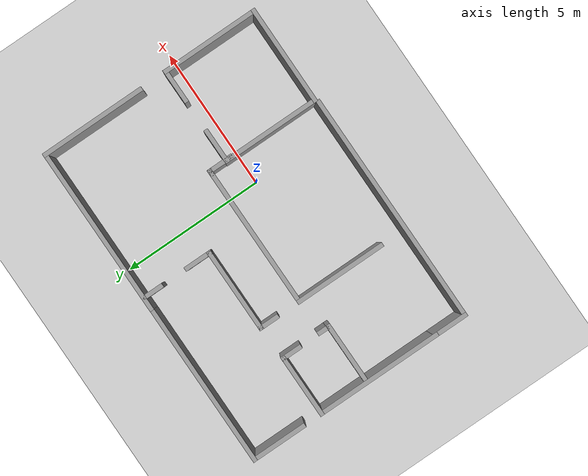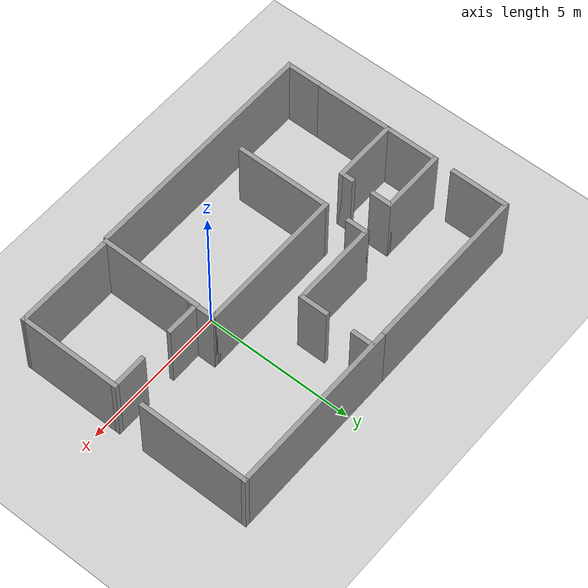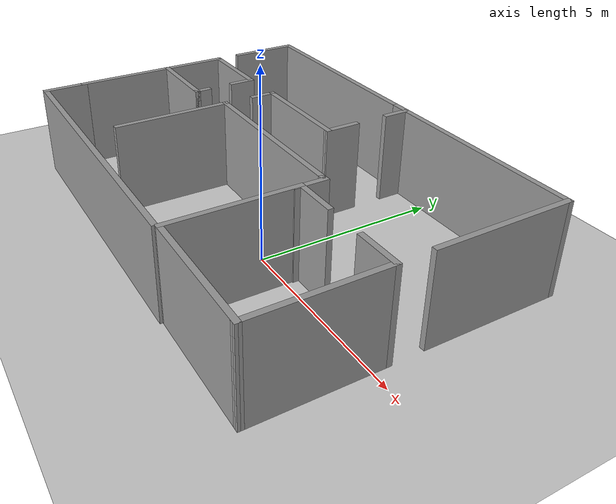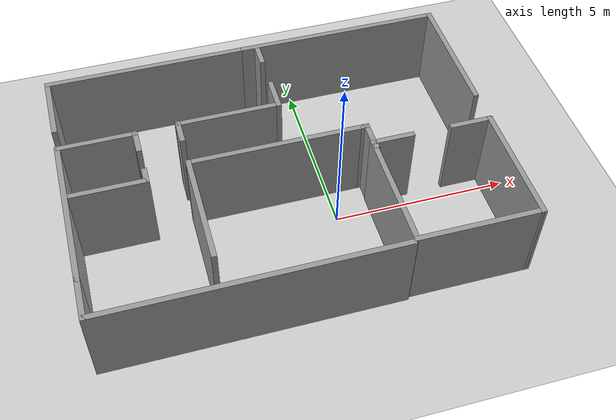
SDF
<sdf version="1.6">
 <world name="default">
  <light name="sun" type="directional">
   <pose>0 0 10 0 -0 0</pose>
   <diffuse>0.8 0.8 0.8 1</diffuse>
   <specular>0.1 0.1 0.1 1</specular>
   <attenuation>
    <range>1000</range>
    <constant>0.9</constant>
    <linear>0.01</linear>
    <quadratic>0.001</quadratic>
   </attenuation>
   <direction>-0.5 0.5 -1</direction>
  </light>
  <model name="ground_plane">
   <static>1</static>
   <link name="link">
    <collision name="collision">
     <geometry><plane><normal>0 0 1</normal><size>100 100</size></plane></geometry>
     <surface><friction><ode><mu>100</mu><mu2>50</mu2></ode></friction></surface>
    </collision>
    <visual name="visual">
     <cast_shadows>0</cast_shadows>
     <geometry><plane><normal>0 0 1</normal><size>100 100</size></plane></geometry>
     <material>
      <script><uri>file://media/materials/scripts/gazebo.material</uri><name>Gazebo/Grey</name></script>
     </material>
    </visual>
   </link>
  </model>
  <gravity>0 0 -9.8</gravity>
  <magnetic_field>6e-06 2.3e-05 -4.2e-05</magnetic_field>
  <atmosphere type="adiabatic"/>
  <physics name="default_physics" default="0" type="ode">
   <max_step_size>0.001</max_step_size>
   <real_time_factor>1</real_time_factor>
   <real_time_update_rate>1000</real_time_update_rate>
  </physics>
  <scene><ambient>0.4 0.4 0.4 1</ambient><background>0.7 0.7 0.7 1</background><shadows>1</shadows></scene>
  <spherical_coordinates>
   <surface_model>EARTH_WGS84</surface_model>
   <latitude_deg>0</latitude_deg>
   <longitude_deg>0</longitude_deg>
   <elevation>0</elevation>
   <heading_deg>0</heading_deg>
  </spherical_coordinates>
  <model name="Untitled">
   <pose>1.50477 1.03036 0 0 -0 0</pose>
   <link name="Wall_1">
    <collision name="Wall_1_Collision">
     <geometry><box><size>3.5329 0.15 2.5</size></box></geometry>
     <pose>0 0 1.25 0 -0 0</pose>
    </collision>
    <visual name="Wall_1_Visual">
     <pose>0 0 1.25 0 -0 0</pose>
     <geometry><box><size>3.5329 0.15 2.5</size></box></geometry>
     <material>
      <script><uri>file://media/materials/scripts/gazebo.material</uri><name>Gazebo/Grey</name></script>
      <ambient>1 1 1 1</ambient>
     </material>
    </visual>
    <pose>1.24202 -3.9643 0 0 0 -0.001944</pose>
   </link>
   <link name="Wall_13">
    <collision name="Wall_13_Collision">
     <geometry><box><size>3.5 0.15 2.5</size></box></geometry>
     <pose>0 0 1.25 0 -0 0</pose>
    </collision>
    <visual name="Wall_13_Visual">
     <pose>0 0 1.25 0 -0 0</pose>
     <geometry><box><size>3.5 0.15 2.5</size></box></geometry>
     <material>
      <script><uri>file://media/materials/scripts/gazebo.material</uri><name>Gazebo/Grey</name></script>
      <ambient>1 1 1 1</ambient>
     </material>
    </visual>
    <pose>-0.449418 -2.28602 0 0 -0 1.5708</pose>
   </link>
   <link name="Wall_14">
    <collision name="Wall_14_Collision">
     <geometry><box><size>1.25 0.15 2.5</size></box></geometry>
     <pose>0 0 1.25 0 -0 0</pose>
    </collision>
    <visual name="Wall_14_Visual">
     <pose>0 0 1.25 0 -0 0</pose>
     <geometry><box><size>1.25 0.15 2.5</size></box></geometry>
     <material>
      <script><uri>file://media/materials/scripts/gazebo.material</uri><name>Gazebo/Grey</name></script>
      <ambient>1 1 1 1</ambient>
     </material>
    </visual>
    <pose>0.100582 -0.611017 0 0 -0 0</pose>
   </link>
   <link name="Wall_2">
    <collision name="Wall_2_Collision">
     <geometry><box><size>3.5 0.15 2.5</size></box></geometry>
     <pose>0 0 1.25 0 -0 0</pose>
    </collision>
    <visual name="Wall_2_Visual">
     <pose>0 0 1.25 0 -0 0</pose>
     <geometry><box><size>3.5 0.15 2.5</size></box></geometry>
     <material>
      <script><uri>file://media/materials/scripts/gazebo.material</uri><name>Gazebo/Grey</name></script>
      <ambient>1 1 1 1</ambient>
     </material>
    </visual>
    <pose>2.93346 -2.29259 0 0 -0 1.5708</pose>
   </link>
   <link name="Wall_22">
    <collision name="Wall_22_Collision">
     <geometry><box><size>3.75 0.15 2.5</size></box></geometry>
     <pose>0 0 1.25 0 -0 0</pose>
    </collision>
    <visual name="Wall_22_Visual">
     <pose>0 0 1.25 0 -0 0</pose>
     <geometry><box><size>3.75 0.15 2.5</size></box></geometry>
     <material>
      <script><uri>file://media/materials/scripts/gazebo.material</uri><name>Gazebo/Grey</name></script>
      <ambient>1 1 1 1</ambient>
     </material>
    </visual>
    <pose>2.91639 2.16774 0 0 -0 1.5708</pose>
   </link>
   <link name="Wall_24">
    <collision name="Wall_24_Collision">
     <geometry><box><size>6 0.15 2.5</size></box></geometry>
     <pose>0 0 1.25 0 -0 0</pose>
    </collision>
    <visual name="Wall_24_Visual">
     <pose>0 0 1.25 0 -0 0</pose>
     <geometry><box><size>6 0.15 2.5</size></box></geometry>
     <material>
      <script><uri>file://media/materials/scripts/gazebo.material</uri><name>Gazebo/Grey</name></script>
      <ambient>1 1 1 1</ambient>
     </material>
    </visual>
    <pose>-0.008613 3.96774 0 0 -0 3.14159</pose>
   </link>
   <link name="Wall_3">
    <collision name="Wall_3_Collision">
     <geometry><box><size>1.25 0.15 2.5</size></box></geometry>
     <pose>0 0 1.25 0 -0 0</pose>
    </collision>
    <visual name="Wall_3_Visual">
     <pose>0 0 1.25 0 -0 0</pose>
     <geometry><box><size>1.25 0.15 2.5</size></box></geometry>
     <material>
      <script><uri>file://media/materials/scripts/gazebo.material</uri><name>Gazebo/Grey</name></script>
      <ambient>1 1 1 1</ambient>
     </material>
    </visual>
    <pose>2.38346 -0.617593 0 0 -0 3.14159</pose>
   </link>
   <link name="Wall_9">
    <collision name="Wall_9_Collision">
     <geometry><box><size>0.15 0.15 2.5</size></box></geometry>
     <pose>0 0 1.25 0 -0 0</pose>
    </collision>
    <visual name="Wall_9_Visual">
     <pose>0 0 1.25 0 -0 0</pose>
     <geometry><box><size>0.15 0.15 2.5</size></box></geometry>
     <material>
      <script><uri>file://media/materials/scripts/gazebo.material</uri><name>Gazebo/Grey</name></script>
      <ambient>1 1 1 1</ambient>
     </material>
    </visual>
    <pose>-0.416542 -0.767592 0 0 -0 0</pose>
   </link>
   <static>1</static>
  </model>
  <model name="Untitled2">
   <pose>-3.04379 0.998175 0 0 -0 0</pose>
   <link name="Wall_29">
    <collision name="Wall_29_Collision">
     <geometry><box><size>5.75 0.15 2.5</size></box></geometry>
     <pose>0 0 1.25 0 -0 0</pose>
    </collision>
    <visual name="Wall_29_Visual">
     <pose>0 0 1.25 0 -0 0</pose>
     <geometry><box><size>5.75 0.15 2.5</size></box></geometry>
     <material>
      <script><uri>file://media/materials/scripts/gazebo.material</uri><name>Gazebo/Grey</name></script>
      <ambient>1 1 1 1</ambient>
     </material>
    </visual>
    <pose>-1.31844 3.99767 0 0 -0 3.14159</pose>
   </link>
   <link name="Wall_32">
    <collision name="Wall_32_Collision">
     <geometry><box><size>2 0.15 2.5</size></box></geometry>
     <pose>0 0 1.25 0 -0 0</pose>
    </collision>
    <visual name="Wall_32_Visual">
     <pose>0 0 1.25 0 -0 0</pose>
     <geometry><box><size>2 0.15 2.5</size></box></geometry>
     <material>
      <script><uri>file://media/materials/scripts/gazebo.material</uri><name>Gazebo/Grey</name></script>
      <ambient>1 1 1 1</ambient>
     </material>
    </visual>
    <pose>-4.11844 3.07267 0 0 0 -1.5708</pose>
   </link>
   <link name="Wall_35">
    <collision name="Wall_35_Collision">
     <geometry><box><size>2.25 0.15 2.5</size></box></geometry>
     <pose>0 0 1.25 0 -0 0</pose>
    </collision>
    <visual name="Wall_35_Visual">
     <pose>0 0 1.25 0 -0 0</pose>
     <geometry><box><size>2.25 0.15 2.5</size></box></geometry>
     <material>
      <script><uri>file://media/materials/scripts/gazebo.material</uri><name>Gazebo/Grey</name></script>
      <ambient>1 1 1 1</ambient>
     </material>
    </visual>
    <pose>-3.06811 1.45233 0 0 -0 0</pose>
   </link>
   <link name="Wall_36">
    <collision name="Wall_36_Collision">
     <geometry><box><size>0.75 0.15 2.5</size></box></geometry>
     <pose>0 0 1.25 0 -0 0</pose>
    </collision>
    <visual name="Wall_36_Visual">
     <pose>0 0 1.25 0 -0 0</pose>
     <geometry><box><size>0.75 0.15 2.5</size></box></geometry>
     <material>
      <script><uri>file://media/materials/scripts/gazebo.material</uri><name>Gazebo/Grey</name></script>
      <ambient>1 1 1 1</ambient>
     </material>
    </visual>
    <pose>-2.01811 1.15233 0 0 0 -1.5708</pose>
   </link>
   <link name="Wall_38">
    <collision name="Wall_38_Collision">
     <geometry><box><size>4.5 0.15 2.5</size></box></geometry>
     <pose>0 0 1.25 0 -0 0</pose>
    </collision>
    <visual name="Wall_38_Visual">
     <pose>0 0 1.25 0 -0 0</pose>
     <geometry><box><size>4.5 0.15 2.5</size></box></geometry>
     <material>
      <script><uri>file://media/materials/scripts/gazebo.material</uri><name>Gazebo/Grey</name></script>
      <ambient>1 1 1 1</ambient>
     </material>
    </visual>
    <pose>-4.11811 -0.722675 0 0 0 -1.5708</pose>
   </link>
   <link name="Wall_40">
    <collision name="Wall_40_Collision">
     <geometry><box><size>1.25 0.15 2.5</size></box></geometry>
     <pose>0 0 1.25 0 -0 0</pose>
    </collision>
    <visual name="Wall_40_Visual">
     <pose>0 0 1.25 0 -0 0</pose>
     <geometry><box><size>1.25 0.15 2.5</size></box></geometry>
     <material>
      <script><uri>file://media/materials/scripts/gazebo.material</uri><name>Gazebo/Grey</name></script>
      <ambient>1 1 1 1</ambient>
     </material>
    </visual>
    <pose>-4.11811 -3.44767 0 0 0 -1.5708</pose>
   </link>
   <link name="Wall_41">
    <collision name="Wall_41_Collision">
     <geometry><box><size>8.25 0.15 2.5</size></box></geometry>
     <pose>0 0 1.25 0 -0 0</pose>
    </collision>
    <visual name="Wall_41_Visual">
     <pose>0 0 1.25 0 -0 0</pose>
     <geometry><box><size>8.25 0.15 2.5</size></box></geometry>
     <material>
      <script><uri>file://media/materials/scripts/gazebo.material</uri><name>Gazebo/Grey</name></script>
      <ambient>1 1 1 1</ambient>
     </material>
    </visual>
    <pose>-0.068114 -3.99768 0 0 -0 0</pose>
   </link>
   <link name="Wall_43">
    <collision name="Wall_43_Collision">
     <geometry><box><size>0.5 0.15 2.5</size></box></geometry>
     <pose>0 0 1.25 0 -0 0</pose>
    </collision>
    <visual name="Wall_43_Visual">
     <pose>0 0 1.25 0 -0 0</pose>
     <geometry><box><size>0.5 0.15 2.5</size></box></geometry>
     <material>
      <script><uri>file://media/materials/scripts/gazebo.material</uri><name>Gazebo/Grey</name></script>
      <ambient>1 1 1 1</ambient>
     </material>
    </visual>
    <pose>-2.00197 -0.107845 0 0 0 -1.5708</pose>
   </link>
   <link name="Wall_44">
    <collision name="Wall_44_Collision">
     <geometry><box><size>2.25 0.15 2.5</size></box></geometry>
     <pose>0 0 1.25 0 -0 0</pose>
    </collision>
    <visual name="Wall_44_Visual">
     <pose>0 0 1.25 0 -0 0</pose>
     <geometry><box><size>2.25 0.15 2.5</size></box></geometry>
     <material>
      <script><uri>file://media/materials/scripts/gazebo.material</uri><name>Gazebo/Grey</name></script>
      <ambient>1 1 1 1</ambient>
     </material>
    </visual>
    <pose>-3.05197 -0.282844 0 0 -0 3.14159</pose>
   </link>
   <link name="Wall_46">
    <collision name="Wall_46_Collision">
     <geometry><box><size>3 0.15 2.5</size></box></geometry>
     <pose>0 0 1.25 0 -0 0</pose>
    </collision>
    <visual name="Wall_46_Visual">
     <pose>0 0 1.25 0 -0 0</pose>
     <geometry><box><size>3 0.15 2.5</size></box></geometry>
     <material>
      <script><uri>file://media/materials/scripts/gazebo.material</uri><name>Gazebo/Grey</name></script>
      <ambient>1 1 1 1</ambient>
     </material>
    </visual>
    <pose>0.593438 1.50357 0 0 -0 0</pose>
   </link>
   <link name="Wall_48">
    <collision name="Wall_48_Collision">
     <geometry><box><size>1 0.15 2.5</size></box></geometry>
     <pose>0 0 1.25 0 -0 0</pose>
    </collision>
    <visual name="Wall_48_Visual">
     <pose>0 0 1.25 0 -0 0</pose>
     <geometry><box><size>1 0.15 2.5</size></box></geometry>
     <material>
      <script><uri>file://media/materials/scripts/gazebo.material</uri><name>Gazebo/Grey</name></script>
      <ambient>1 1 1 1</ambient>
     </material>
    </visual>
    <pose>2.01844 1.92857 0 0 -0 1.5708</pose>
   </link>
   <link name="Wall_50">
    <collision name="Wall_50_Collision">
     <geometry><box><size>0.75 0.15 2.5</size></box></geometry>
     <pose>0 0 1.25 0 -0 0</pose>
    </collision>
    <visual name="Wall_50_Visual">
     <pose>0 0 1.25 0 -0 0</pose>
     <geometry><box><size>0.75 0.15 2.5</size></box></geometry>
     <material>
      <script><uri>file://media/materials/scripts/gazebo.material</uri><name>Gazebo/Grey</name></script>
      <ambient>1 1 1 1</ambient>
     </material>
    </visual>
    <pose>2.01466 3.65078 0 0 0 -1.5708</pose>
   </link>
   <link name="Wall_52">
    <collision name="Wall_52_Collision">
     <geometry><box><size>0.75 0.15 2.5</size></box></geometry>
     <pose>0 0 1.25 0 -0 0</pose>
    </collision>
    <visual name="Wall_52_Visual">
     <pose>0 0 1.25 0 -0 0</pose>
     <geometry><box><size>0.75 0.15 2.5</size></box></geometry>
     <material>
      <script><uri>file://media/materials/scripts/gazebo.material</uri><name>Gazebo/Grey</name></script>
      <ambient>1 1 1 1</ambient>
     </material>
    </visual>
    <pose>-0.831562 1.20357 0 0 0 -1.5708</pose>
   </link>
   <link name="Wall_54">
    <collision name="Wall_54_Collision">
     <geometry><box><size>3.25 0.15 2.5</size></box></geometry>
     <pose>0 0 1.25 0 -0 0</pose>
    </collision>
    <visual name="Wall_54_Visual">
     <pose>0 0 1.25 0 -0 0</pose>
     <geometry><box><size>3.25 0.15 2.5</size></box></geometry>
     <material>
      <script><uri>file://media/materials/scripts/gazebo.material</uri><name>Gazebo/Grey</name></script>
      <ambient>1 1 1 1</ambient>
     </material>
    </visual>
    <pose>-0.831562 -1.50944 0 0 0 -1.5708</pose>
   </link>
   <link name="Wall_56">
    <collision name="Wall_56_Collision">
     <geometry><box><size>5 0.15 2.5</size></box></geometry>
     <pose>0 0 1.25 0 -0 0</pose>
    </collision>
    <visual name="Wall_56_Visual">
     <pose>0 0 1.25 0 -0 0</pose>
     <geometry><box><size>5 0.15 2.5</size></box></geometry>
     <material>
      <script><uri>file://media/materials/scripts/gazebo.material</uri><name>Gazebo/Grey</name></script>
      <ambient>1 1 1 1</ambient>
     </material>
    </visual>
    <pose>1.59344 0.040555 0 0 -0 0</pose>
   </link>
   <link name="Wall_57">
    <collision name="Wall_57_Collision">
     <geometry><box><size>0.25 0.15 2.5</size></box></geometry>
     <pose>0 0 1.25 0 -0 0</pose>
    </collision>
    <visual name="Wall_57_Visual">
     <pose>0 0 1.25 0 -0 0</pose>
     <geometry><box><size>0.25 0.15 2.5</size></box></geometry>
     <material>
      <script><uri>file://media/materials/scripts/gazebo.material</uri><name>Gazebo/Grey</name></script>
      <ambient>1 1 1 1</ambient>
     </material>
    </visual>
    <pose>4.06844 0.040555 0 0 -0 0</pose>
   </link>
   <link name="Wall_58">
    <collision name="Wall_58_Collision">
     <geometry><box><size>0.75 0.15 2.5</size></box></geometry>
     <pose>0 0 1.25 0 -0 0</pose>
    </collision>
    <visual name="Wall_58_Visual">
     <pose>0 0 1.25 0 -0 0</pose>
     <geometry><box><size>0.75 0.15 2.5</size></box></geometry>
     <material>
      <script><uri>file://media/materials/scripts/gazebo.material</uri><name>Gazebo/Grey</name></script>
      <ambient>1 1 1 1</ambient>
     </material>
    </visual>
    <pose>4.11844 -0.259445 0 0 0 -1.5708</pose>
   </link>
   <static>1</static>
  </model>
 </world>
</sdf>
